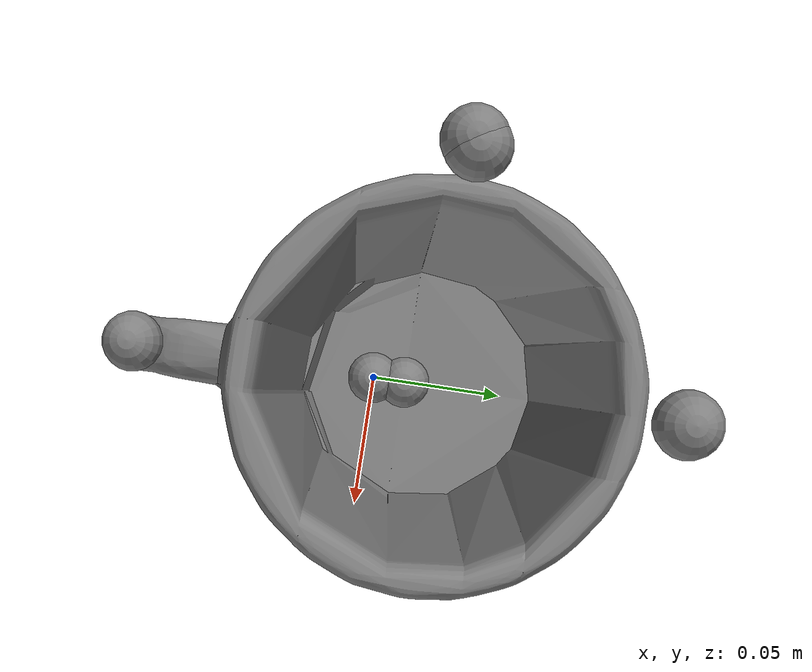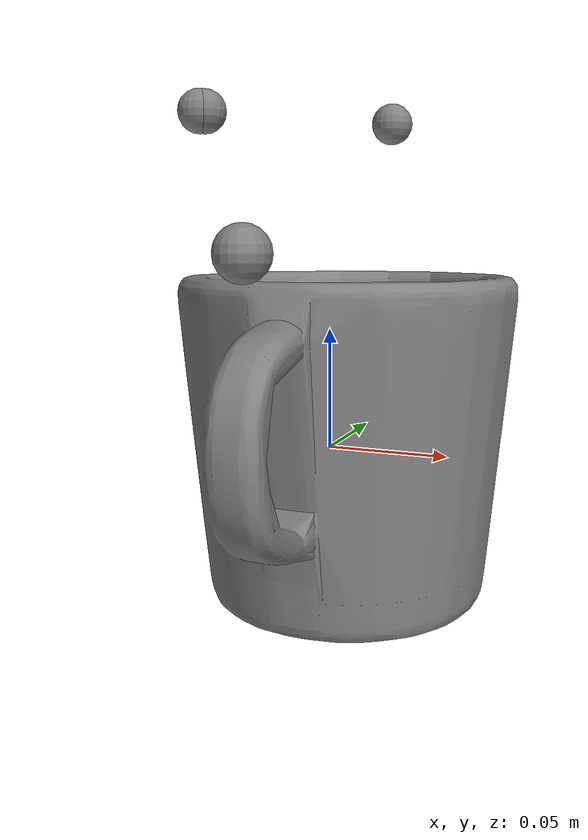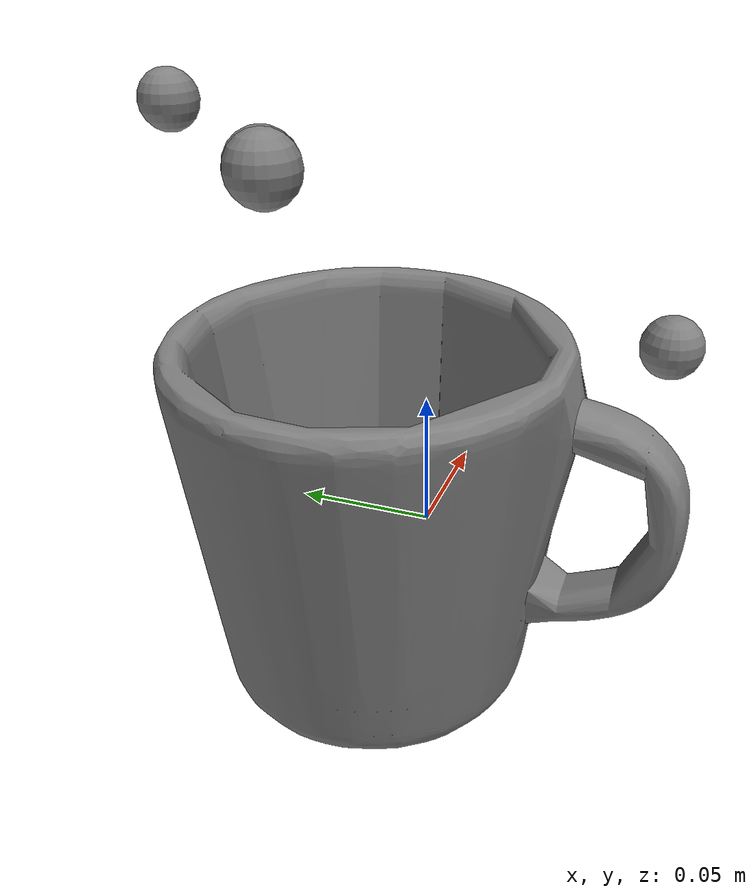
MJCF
<mujoco model="039_mug_12">
  <asset>
    <mesh name="039_mug_collision_12" file="039_mug_12.stl" scale="0.1 0.1 0.1"/>
  </asset>

  <worldbody>
<body name="039_mug_12">
  <geom name="039_mug_collision_12" type="mesh" mesh="039_mug_collision_12" />
  <site name="039_mug_12_keypoints_0" pos="0.0 0.08801700000000001 0.144159" size="0.01"/>
  <site name="039_mug_12_keypoints_1" pos="-0.0675312 0.0191178 0.1441382" size="0.01"/>
  <site name="039_mug_12_keypoints_2" pos="-0.0692691 0.0180441 0.1441379" size="0.01"/>
  <site name="039_mug_12_keypoints_3" pos="0.0 -0.0798271 0.08186210000000001" size="0.01"/>
  <site name="039_mug_12_keypoints_4" pos="0.0 0.0 0.0" size="0.01"/>
  <site name="039_mug_12_keypoints_5" pos="0.0 0.012273300000000001 3.7e-06" size="0.01"/>
</body>
  </worldbody>
</mujoco>
